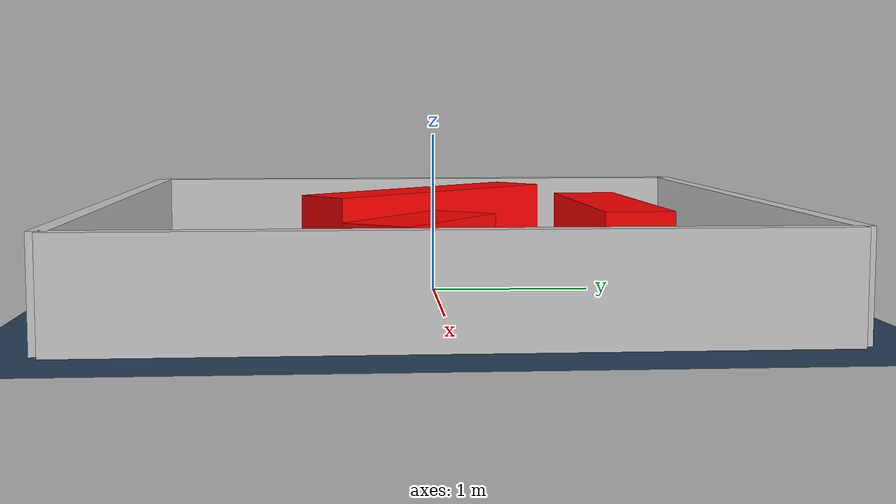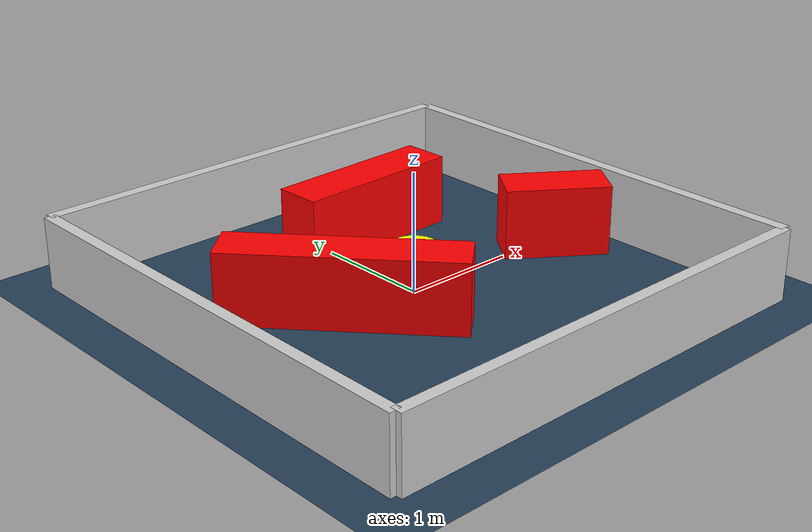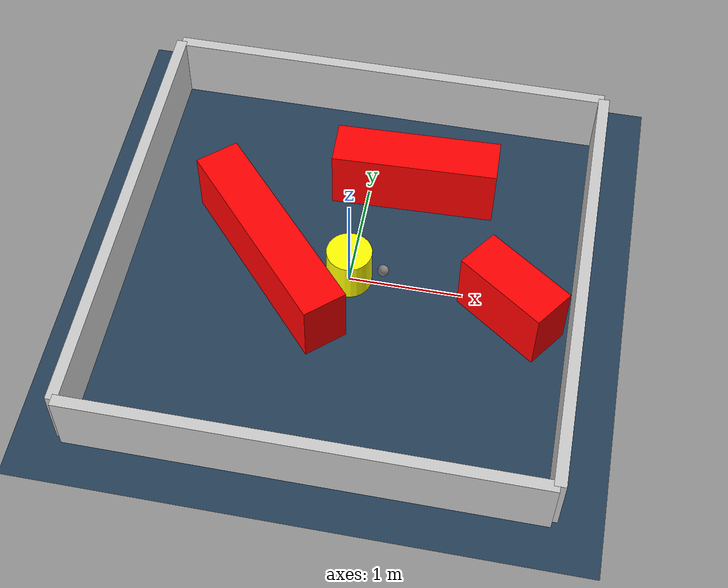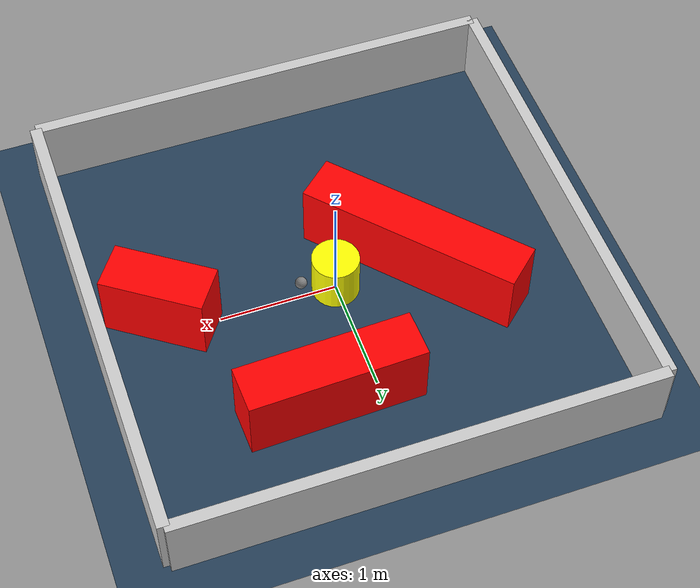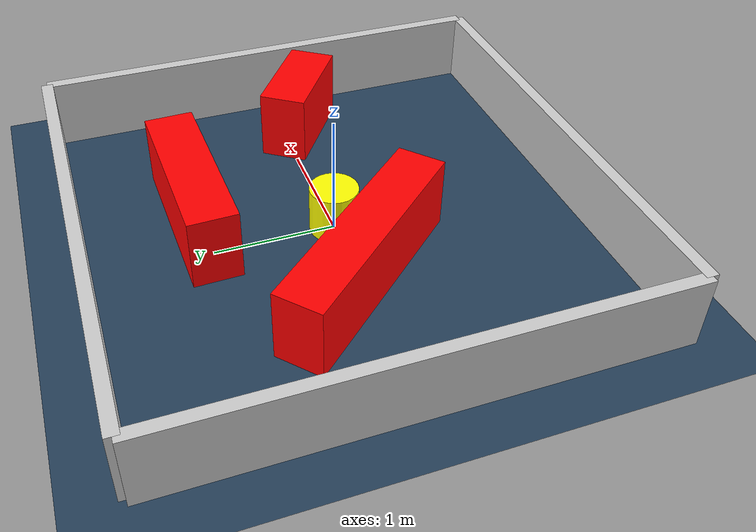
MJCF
<?xml version="1.0" ?>
<mujoco model="generated_environment">
  <option timestep="0.01" integrator="RK4" cone="elliptic"/>
  <default>
    <geom density="1"/>
  </default>
  <asset>
    <texture builtin="gradient" height="3072" rgb1="0.3 0.5 0.7" rgb2="0 0 0" type="skybox" width="512"/>
    <texture builtin="checker" height="300" mark="edge" markrgb="0.8 0.8 0.8" name="groundplane" rgb1="0.2 0.3 0.4" rgb2="0.1 0.2 0.3" type="2d" width="300"/>
    <material name="groundplane" reflectance="0.2" texrepeat="5 5" texture="groundplane" texuniform="true"/>
    <material name="robot" rgba="0.0 1.0 0.0 1"/>
  </asset>
  <worldbody>
    <light dir="0 0 -1" directional="true" pos="0 0 1.5"/>
    <geom condim="4" friction="1.0 0.005 0.001" material="groundplane" name="floor" size="0 0 0.05" type="plane"/>
    <body name="walls">
      <geom name="wall_1" condim="4" pos="-2.0 0.0 0.3" rgba="0.800000011920929 0.800000011920929 0.800000011920929 1.0" size="0.05 2.0 0.3" type="box"/>
      <geom name="wall_2" condim="4" pos="2.0 0.0 0.3" rgba="0.800000011920929 0.800000011920929 0.800000011920929 1.0" size="0.05 2.0 0.3" type="box"/>
      <geom name="wall_3" condim="4" pos="0.0 -2.0 0.3" rgba="0.800000011920929 0.800000011920929 0.800000011920929 1.0" size="2.0 0.05 0.3" type="box"/>
      <geom name="wall_4" condim="4" pos="0.0 2.0 0.3" rgba="0.800000011920929 0.800000011920929 0.800000011920929 1.0" size="2.0 0.05 0.3" type="box"/>
    </body>
    <body name="robot">
      <joint name="joint_x" type="slide" pos="0 0 0" axis="1 0 0"/>
      <joint name="joint_y" type="slide" pos="0 0 0" axis="0 1 0"/>
      <geom name="robot" type="sphere" pos="0.3 0.0 0.2" size="0.05" mass="5." friction="1.0 0.005 0.0001" condim="4" rgba="0.5 0.5 0.5 1.0"/>
      <site name="sensor_ball"/>
    </body>
    <body name="obstacle_movable_1">
      <geom name="obstacle_movable_1" condim="4" pos="0.0 0.0 0.2" euler="0 0 0.0" friction="1.0 0.005 0.001" rgba="1.0 1.0 0.0 1.0" size="0.2 0.2 0.0" type="cylinder" mass="0.1"/>
      <joint type="free"/>
    </body>
    <body name="obstacle_2_static">
      <geom name="obstacle_2_static" condim="4" pos="-0.7045359999273149 0.0024891692525874642 0.3" euler="0 0 311.6297786399684" friction="1.0 0.005 0.001" rgba="1 0 0 1" size="0.9600080025108637 0.2 0.3" type="box"/>
    </body>
    <body name="obstacle_3_static">
      <geom name="obstacle_3_static" condim="4" pos="0.4087571424061116 1.0584160486800098 0.3" euler="0 0 181.8124770138109" friction="1.0 0.005 0.001" rgba="1 0 0 1" size="0.7340948068739738 0.2 0.3" type="box"/>
    </body>
    <body name="obstacle_4_static">
      <geom name="obstacle_4_static" condim="4" pos="1.4407467877050653 -0.15044823155607312 0.3" euler="0 0 324.4626212470259" friction="1.0 0.005 0.001" rgba="1 0 0 1" size="0.4358061484384732 0.2 0.3" type="box"/>
    </body>
  </worldbody>
  <actuator>
    <motor name="actuator_x" joint="joint_x" gear="1" ctrlrange="-1 1"/>
    <motor name="actuator_y" joint="joint_y" gear="1" ctrlrange="-1 1"/>
  </actuator>
</mujoco>
